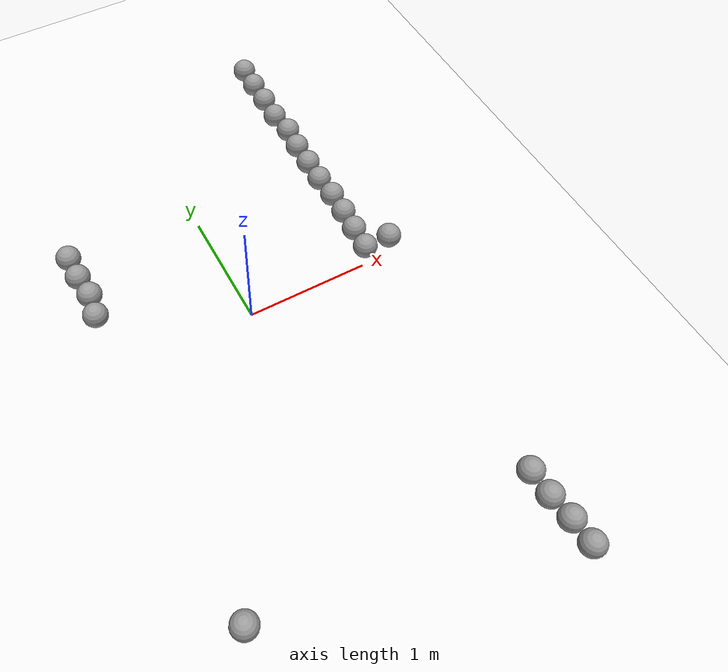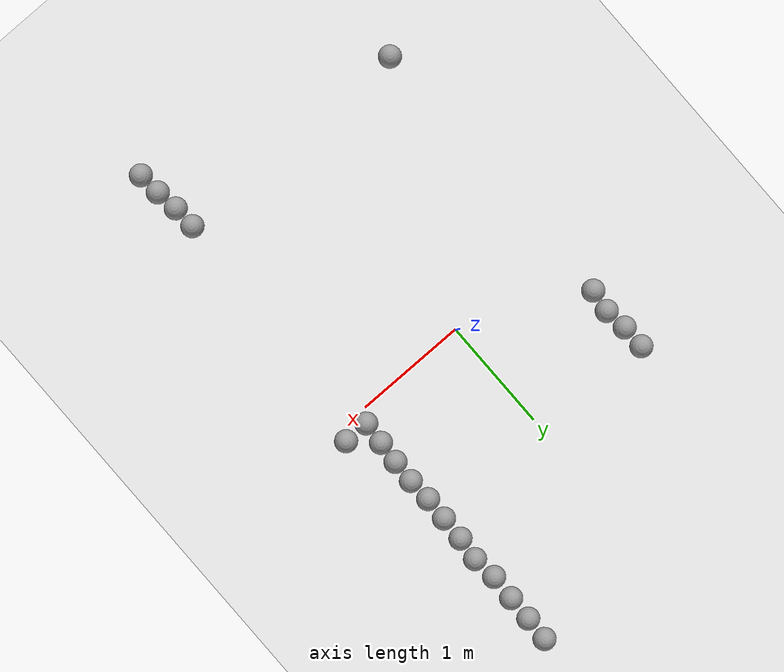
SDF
<sdf version="1.7">
 <world name="default">
  <model name="ground_plane">
   <static>1</static>
   <link name="link">
    <collision name="collision">
     <geometry><plane><normal>0 0 1</normal><size>100 100</size></plane></geometry>
     <surface>
      <contact><collide_bitmask>65535</collide_bitmask></contact>
      <friction><ode><mu>100</mu><mu2>50</mu2></ode></friction>
     </surface>
    </collision>
    <visual name="visual">
     <cast_shadows>0</cast_shadows>
     <geometry><plane><normal>0 0 1</normal><size>100 100</size></plane></geometry>
     <material>
      <script><uri>file://media/materials/scripts/gazebo.material</uri><name>Gazebo/White</name></script>
     </material>
    </visual>
   </link>
  </model>
  <model name="sphere_15">
   <link name="link_0">
    <inertial>
     <mass>1</mass>
     <inertia><ixx>0.1</ixx><ixy>0</ixy><ixz>0</ixz><iyy>0.1</iyy><iyz>0</iyz><izz>0.1</izz></inertia>
    </inertial>
    <visual name="visual">
     <geometry><sphere><radius>0.1</radius></sphere></geometry>
     <material>
      <lighting>1</lighting>
      <script><uri>file://media/materials/scripts/gazebo.material</uri><name>Gazebo/Grey</name></script>
      <shader type="pixel"><normal_map>__default__</normal_map></shader>
      <ambient>0.3 0.3 0.3 1</ambient>
      <diffuse>0.7 0.7 0.7 1</diffuse>
      <specular>0.01 0.01 0.01 1</specular>
      <emissive>0 0 0 1</emissive>
     </material>
    </visual>
    <collision name="collision">
     <geometry><sphere><radius>0.1</radius></sphere></geometry>
     <surface>
      <friction>
       <ode><mu>1</mu><mu2>1</mu2><fdir1>0 0 0</fdir1><slip1>0</slip1><slip2>0</slip2></ode>
       <torsional>
        <coefficient>1</coefficient>
        <patch_radius>0</patch_radius>
        <surface_radius>0</surface_radius>
        <use_patch_radius>1</use_patch_radius>
        <ode><slip>0</slip></ode>
       </torsional>
      </friction>
      <bounce><restitution_coefficient>0</restitution_coefficient><threshold>1e+06</threshold></bounce>
      <contact>
       <collide_without_contact>0</collide_without_contact>
       <collide_without_contact_bitmask>1</collide_without_contact_bitmask>
       <collide_bitmask>1</collide_bitmask>
       <ode>
        <soft_cfm>0</soft_cfm>
        <soft_erp>0.2</soft_erp>
        <kp>1e+13</kp>
        <kd>1</kd>
        <max_vel>0.01</max_vel>
        <min_depth>0</min_depth>
       </ode>
       <bullet>
        <split_impulse>1</split_impulse>
        <split_impulse_penetration_threshold>-0.01</split_impulse_penetration_threshold>
        <soft_cfm>0</soft_cfm>
        <soft_erp>0.2</soft_erp>
        <kp>1e+13</kp>
        <kd>1</kd>
       </bullet>
      </contact>
     </surface>
    </collision>
   </link>
   <static>0</static>
   <pose>-1.07546 -2.08235 0.1 -0.059386 0.004875 0.000548</pose>
  </model>
  <model name="sphere_33">
   <link name="link_0">
    <inertial>
     <mass>1</mass>
     <inertia><ixx>0.1</ixx><ixy>0</ixy><ixz>0</ixz><iyy>0.1</iyy><iyz>0</iyz><izz>0.1</izz></inertia>
    </inertial>
    <visual name="visual">
     <geometry><sphere><radius>0.1</radius></sphere></geometry>
     <material>
      <lighting>1</lighting>
      <script><uri>file://media/materials/scripts/gazebo.material</uri><name>Gazebo/Grey</name></script>
      <shader type="pixel"><normal_map>__default__</normal_map></shader>
      <ambient>0.3 0.3 0.3 1</ambient>
      <diffuse>0.7 0.7 0.7 1</diffuse>
      <specular>0.01 0.01 0.01 1</specular>
      <emissive>0 0 0 1</emissive>
     </material>
    </visual>
    <collision name="collision">
     <geometry><sphere><radius>0.1</radius></sphere></geometry>
     <surface>
      <friction>
       <ode><mu>1</mu><mu2>1</mu2><fdir1>0 0 0</fdir1><slip1>0</slip1><slip2>0</slip2></ode>
       <torsional>
        <coefficient>1</coefficient>
        <patch_radius>0</patch_radius>
        <surface_radius>0</surface_radius>
        <use_patch_radius>1</use_patch_radius>
        <ode><slip>0</slip></ode>
       </torsional>
      </friction>
      <bounce><restitution_coefficient>0</restitution_coefficient><threshold>1e+06</threshold></bounce>
      <contact>
       <collide_without_contact>0</collide_without_contact>
       <collide_without_contact_bitmask>1</collide_without_contact_bitmask>
       <collide_bitmask>1</collide_bitmask>
       <ode>
        <soft_cfm>0</soft_cfm>
        <soft_erp>0.2</soft_erp>
        <kp>1e+13</kp>
        <kd>1</kd>
        <max_vel>0.01</max_vel>
        <min_depth>0</min_depth>
       </ode>
       <bullet>
        <split_impulse>1</split_impulse>
        <split_impulse_penetration_threshold>-0.01</split_impulse_penetration_threshold>
        <soft_cfm>0</soft_cfm>
        <soft_erp>0.2</soft_erp>
        <kp>1e+13</kp>
        <kd>1</kd>
       </bullet>
      </contact>
     </surface>
    </collision>
   </link>
   <static>0</static>
   <pose>1.09596 -2.09176 0.1 -0.053944 -0.003381 -0.000948</pose>
  </model>
  <model name="sphere_34">
   <link name="link_0">
    <inertial>
     <mass>1</mass>
     <inertia><ixx>0.1</ixx><ixy>0</ixy><ixz>0</ixz><iyy>0.1</iyy><iyz>0</iyz><izz>0.1</izz></inertia>
    </inertial>
    <visual name="visual">
     <geometry><sphere><radius>0.1</radius></sphere></geometry>
     <material>
      <lighting>1</lighting>
      <script><uri>file://media/materials/scripts/gazebo.material</uri><name>Gazebo/Grey</name></script>
      <shader type="pixel"><normal_map>__default__</normal_map></shader>
      <ambient>0.3 0.3 0.3 1</ambient>
      <diffuse>0.7 0.7 0.7 1</diffuse>
      <specular>0.01 0.01 0.01 1</specular>
      <emissive>0 0 0 1</emissive>
     </material>
    </visual>
    <collision name="collision">
     <geometry><sphere><radius>0.1</radius></sphere></geometry>
     <surface>
      <friction>
       <ode><mu>1</mu><mu2>1</mu2><fdir1>0 0 0</fdir1><slip1>0</slip1><slip2>0</slip2></ode>
       <torsional>
        <coefficient>1</coefficient>
        <patch_radius>0</patch_radius>
        <surface_radius>0</surface_radius>
        <use_patch_radius>1</use_patch_radius>
        <ode><slip>0</slip></ode>
       </torsional>
      </friction>
      <bounce><restitution_coefficient>0</restitution_coefficient><threshold>1e+06</threshold></bounce>
      <contact>
       <collide_without_contact>0</collide_without_contact>
       <collide_without_contact_bitmask>1</collide_without_contact_bitmask>
       <collide_bitmask>1</collide_bitmask>
       <ode>
        <soft_cfm>0</soft_cfm>
        <soft_erp>0.2</soft_erp>
        <kp>1e+13</kp>
        <kd>1</kd>
        <max_vel>0.01</max_vel>
        <min_depth>0</min_depth>
       </ode>
       <bullet>
        <split_impulse>1</split_impulse>
        <split_impulse_penetration_threshold>-0.01</split_impulse_penetration_threshold>
        <soft_cfm>0</soft_cfm>
        <soft_erp>0.2</soft_erp>
        <kp>1e+13</kp>
        <kd>1</kd>
       </bullet>
      </contact>
     </surface>
    </collision>
   </link>
   <static>0</static>
   <pose>1.10487 -2.29479 0.1 0.017207 -0.001358 0.002524</pose>
  </model>
  <model name="sphere_35">
   <link name="link_0">
    <inertial>
     <mass>1</mass>
     <inertia><ixx>0.1</ixx><ixy>0</ixy><ixz>0</ixz><iyy>0.1</iyy><iyz>0</iyz><izz>0.1</izz></inertia>
    </inertial>
    <visual name="visual">
     <geometry><sphere><radius>0.1</radius></sphere></geometry>
     <material>
      <lighting>1</lighting>
      <script><uri>file://media/materials/scripts/gazebo.material</uri><name>Gazebo/Grey</name></script>
      <shader type="pixel"><normal_map>__default__</normal_map></shader>
      <ambient>0.3 0.3 0.3 1</ambient>
      <diffuse>0.7 0.7 0.7 1</diffuse>
      <specular>0.01 0.01 0.01 1</specular>
      <emissive>0 0 0 1</emissive>
     </material>
    </visual>
    <collision name="collision">
     <geometry><sphere><radius>0.1</radius></sphere></geometry>
     <surface>
      <friction>
       <ode><mu>1</mu><mu2>1</mu2><fdir1>0 0 0</fdir1><slip1>0</slip1><slip2>0</slip2></ode>
       <torsional>
        <coefficient>1</coefficient>
        <patch_radius>0</patch_radius>
        <surface_radius>0</surface_radius>
        <use_patch_radius>1</use_patch_radius>
        <ode><slip>0</slip></ode>
       </torsional>
      </friction>
      <bounce><restitution_coefficient>0</restitution_coefficient><threshold>1e+06</threshold></bounce>
      <contact>
       <collide_without_contact>0</collide_without_contact>
       <collide_without_contact_bitmask>1</collide_without_contact_bitmask>
       <collide_bitmask>1</collide_bitmask>
       <ode>
        <soft_cfm>0</soft_cfm>
        <soft_erp>0.2</soft_erp>
        <kp>1e+13</kp>
        <kd>1</kd>
        <max_vel>0.01</max_vel>
        <min_depth>0</min_depth>
       </ode>
       <bullet>
        <split_impulse>1</split_impulse>
        <split_impulse_penetration_threshold>-0.01</split_impulse_penetration_threshold>
        <soft_cfm>0</soft_cfm>
        <soft_erp>0.2</soft_erp>
        <kp>1e+13</kp>
        <kd>1</kd>
       </bullet>
      </contact>
     </surface>
    </collision>
   </link>
   <static>0</static>
   <pose>1.1309 -2.49326 0.1 -0.103663 0.025602 0.030256</pose>
  </model>
  <model name="sphere_36">
   <link name="link_0">
    <inertial>
     <mass>1</mass>
     <inertia><ixx>0.1</ixx><ixy>0</ixy><ixz>0</ixz><iyy>0.1</iyy><iyz>0</iyz><izz>0.1</izz></inertia>
    </inertial>
    <visual name="visual">
     <geometry><sphere><radius>0.1</radius></sphere></geometry>
     <material>
      <lighting>1</lighting>
      <script><uri>file://media/materials/scripts/gazebo.material</uri><name>Gazebo/Grey</name></script>
      <shader type="pixel"><normal_map>__default__</normal_map></shader>
      <ambient>0.3 0.3 0.3 1</ambient>
      <diffuse>0.7 0.7 0.7 1</diffuse>
      <specular>0.01 0.01 0.01 1</specular>
      <emissive>0 0 0 1</emissive>
     </material>
    </visual>
    <collision name="collision">
     <geometry><sphere><radius>0.1</radius></sphere></geometry>
     <surface>
      <friction>
       <ode><mu>1</mu><mu2>1</mu2><fdir1>0 0 0</fdir1><slip1>0</slip1><slip2>0</slip2></ode>
       <torsional>
        <coefficient>1</coefficient>
        <patch_radius>0</patch_radius>
        <surface_radius>0</surface_radius>
        <use_patch_radius>1</use_patch_radius>
        <ode><slip>0</slip></ode>
       </torsional>
      </friction>
      <bounce><restitution_coefficient>0</restitution_coefficient><threshold>1e+06</threshold></bounce>
      <contact>
       <collide_without_contact>0</collide_without_contact>
       <collide_without_contact_bitmask>1</collide_without_contact_bitmask>
       <collide_bitmask>1</collide_bitmask>
       <ode>
        <soft_cfm>0</soft_cfm>
        <soft_erp>0.2</soft_erp>
        <kp>1e+13</kp>
        <kd>1</kd>
        <max_vel>0.01</max_vel>
        <min_depth>0</min_depth>
       </ode>
       <bullet>
        <split_impulse>1</split_impulse>
        <split_impulse_penetration_threshold>-0.01</split_impulse_penetration_threshold>
        <soft_cfm>0</soft_cfm>
        <soft_erp>0.2</soft_erp>
        <kp>1e+13</kp>
        <kd>1</kd>
       </bullet>
      </contact>
     </surface>
    </collision>
   </link>
   <static>0</static>
   <pose>1.14408 -2.693 0.1 0.003598 0.046404 0.000405</pose>
  </model>
  <model name="sphere_62">
   <link name="link_0">
    <inertial>
     <mass>1</mass>
     <inertia><ixx>0.1</ixx><ixy>0</ixy><ixz>0</ixz><iyy>0.1</iyy><iyz>0</iyz><izz>0.1</izz></inertia>
    </inertial>
    <visual name="visual">
     <geometry><sphere><radius>0.1</radius></sphere></geometry>
     <material>
      <lighting>1</lighting>
      <script><uri>file://media/materials/scripts/gazebo.material</uri><name>Gazebo/Grey</name></script>
      <shader type="pixel"><normal_map>__default__</normal_map></shader>
      <ambient>0.3 0.3 0.3 1</ambient>
      <diffuse>0.7 0.7 0.7 1</diffuse>
      <specular>0.01 0.01 0.01 1</specular>
      <emissive>0 0 0 1</emissive>
     </material>
    </visual>
    <collision name="collision">
     <geometry><sphere><radius>0.1</radius></sphere></geometry>
     <surface>
      <friction>
       <ode><mu>1</mu><mu2>1</mu2><fdir1>0 0 0</fdir1><slip1>0</slip1><slip2>0</slip2></ode>
       <torsional>
        <coefficient>1</coefficient>
        <patch_radius>0</patch_radius>
        <surface_radius>0</surface_radius>
        <use_patch_radius>1</use_patch_radius>
        <ode><slip>0</slip></ode>
       </torsional>
      </friction>
      <bounce><restitution_coefficient>0</restitution_coefficient><threshold>1e+06</threshold></bounce>
      <contact>
       <collide_without_contact>0</collide_without_contact>
       <collide_without_contact_bitmask>1</collide_without_contact_bitmask>
       <collide_bitmask>1</collide_bitmask>
       <ode>
        <soft_cfm>0</soft_cfm>
        <soft_erp>0.2</soft_erp>
        <kp>1e+13</kp>
        <kd>1</kd>
        <max_vel>0.01</max_vel>
        <min_depth>0</min_depth>
       </ode>
       <bullet>
        <split_impulse>1</split_impulse>
        <split_impulse_penetration_threshold>-0.01</split_impulse_penetration_threshold>
        <soft_cfm>0</soft_cfm>
        <soft_erp>0.2</soft_erp>
        <kp>1e+13</kp>
        <kd>1</kd>
       </bullet>
      </contact>
     </surface>
    </collision>
   </link>
   <static>0</static>
   <pose>1.07641 0.101942 0.1 0 -0 0</pose>
  </model>
  <model name="sphere_63">
   <link name="link_0">
    <inertial>
     <mass>1</mass>
     <inertia><ixx>0.1</ixx><ixy>0</ixy><ixz>0</ixz><iyy>0.1</iyy><iyz>0</iyz><izz>0.1</izz></inertia>
    </inertial>
    <visual name="visual">
     <geometry><sphere><radius>0.1</radius></sphere></geometry>
     <material>
      <lighting>1</lighting>
      <script><uri>file://media/materials/scripts/gazebo.material</uri><name>Gazebo/Grey</name></script>
      <shader type="pixel"><normal_map>__default__</normal_map></shader>
      <ambient>0.3 0.3 0.3 1</ambient>
      <diffuse>0.7 0.7 0.7 1</diffuse>
      <specular>0.01 0.01 0.01 1</specular>
      <emissive>0 0 0 1</emissive>
     </material>
    </visual>
    <collision name="collision">
     <geometry><sphere><radius>0.1</radius></sphere></geometry>
     <surface>
      <friction>
       <ode><mu>1</mu><mu2>1</mu2><fdir1>0 0 0</fdir1><slip1>0</slip1><slip2>0</slip2></ode>
       <torsional>
        <coefficient>1</coefficient>
        <patch_radius>0</patch_radius>
        <surface_radius>0</surface_radius>
        <use_patch_radius>1</use_patch_radius>
        <ode><slip>0</slip></ode>
       </torsional>
      </friction>
      <bounce><restitution_coefficient>0</restitution_coefficient><threshold>1e+06</threshold></bounce>
      <contact>
       <collide_without_contact>0</collide_without_contact>
       <collide_without_contact_bitmask>1</collide_without_contact_bitmask>
       <collide_bitmask>1</collide_bitmask>
       <ode>
        <soft_cfm>0</soft_cfm>
        <soft_erp>0.2</soft_erp>
        <kp>1e+13</kp>
        <kd>1</kd>
        <max_vel>0.01</max_vel>
        <min_depth>0</min_depth>
       </ode>
       <bullet>
        <split_impulse>1</split_impulse>
        <split_impulse_penetration_threshold>-0.01</split_impulse_penetration_threshold>
        <soft_cfm>0</soft_cfm>
        <soft_erp>0.2</soft_erp>
        <kp>1e+13</kp>
        <kd>1</kd>
       </bullet>
      </contact>
     </surface>
    </collision>
   </link>
   <static>0</static>
   <pose>1.30048 0.10381 0.1 0 -0 0</pose>
  </model>
  <model name="sphere_74">
   <link name="link_0">
    <inertial>
     <mass>1</mass>
     <inertia><ixx>0.1</ixx><ixy>0</ixy><ixz>0</ixz><iyy>0.1</iyy><iyz>0</iyz><izz>0.1</izz></inertia>
    </inertial>
    <visual name="visual">
     <geometry><sphere><radius>0.1</radius></sphere></geometry>
     <material>
      <lighting>1</lighting>
      <script><uri>file://media/materials/scripts/gazebo.material</uri><name>Gazebo/Grey</name></script>
      <shader type="pixel"><normal_map>__default__</normal_map></shader>
      <ambient>0.3 0.3 0.3 1</ambient>
      <diffuse>0.7 0.7 0.7 1</diffuse>
      <specular>0.01 0.01 0.01 1</specular>
      <emissive>0 0 0 1</emissive>
     </material>
    </visual>
    <collision name="collision">
     <geometry><sphere><radius>0.1</radius></sphere></geometry>
     <surface>
      <friction>
       <ode><mu>1</mu><mu2>1</mu2><fdir1>0 0 0</fdir1><slip1>0</slip1><slip2>0</slip2></ode>
       <torsional>
        <coefficient>1</coefficient>
        <patch_radius>0</patch_radius>
        <surface_radius>0</surface_radius>
        <use_patch_radius>1</use_patch_radius>
        <ode><slip>0</slip></ode>
       </torsional>
      </friction>
      <bounce><restitution_coefficient>0</restitution_coefficient><threshold>1e+06</threshold></bounce>
      <contact>
       <collide_without_contact>0</collide_without_contact>
       <collide_without_contact_bitmask>1</collide_without_contact_bitmask>
       <collide_bitmask>1</collide_bitmask>
       <ode>
        <soft_cfm>0</soft_cfm>
        <soft_erp>0.2</soft_erp>
        <kp>1e+13</kp>
        <kd>1</kd>
        <max_vel>0.01</max_vel>
        <min_depth>0</min_depth>
       </ode>
       <bullet>
        <split_impulse>1</split_impulse>
        <split_impulse_penetration_threshold>-0.01</split_impulse_penetration_threshold>
        <soft_cfm>0</soft_cfm>
        <soft_erp>0.2</soft_erp>
        <kp>1e+13</kp>
        <kd>1</kd>
       </bullet>
      </contact>
     </surface>
    </collision>
   </link>
   <static>0</static>
   <pose>1.08893 0.304027 0.1 0.017206 -0.001011 -0.000165</pose>
  </model>
  <model name="sphere_75">
   <link name="link_0">
    <inertial>
     <mass>1</mass>
     <inertia><ixx>0.1</ixx><ixy>0</ixy><ixz>0</ixz><iyy>0.1</iyy><iyz>0</iyz><izz>0.1</izz></inertia>
    </inertial>
    <visual name="visual">
     <geometry><sphere><radius>0.1</radius></sphere></geometry>
     <material>
      <lighting>1</lighting>
      <script><uri>file://media/materials/scripts/gazebo.material</uri><name>Gazebo/Grey</name></script>
      <shader type="pixel"><normal_map>__default__</normal_map></shader>
      <ambient>0.3 0.3 0.3 1</ambient>
      <diffuse>0.7 0.7 0.7 1</diffuse>
      <specular>0.01 0.01 0.01 1</specular>
      <emissive>0 0 0 1</emissive>
     </material>
    </visual>
    <collision name="collision">
     <geometry><sphere><radius>0.1</radius></sphere></geometry>
     <surface>
      <friction>
       <ode><mu>1</mu><mu2>1</mu2><fdir1>0 0 0</fdir1><slip1>0</slip1><slip2>0</slip2></ode>
       <torsional>
        <coefficient>1</coefficient>
        <patch_radius>0</patch_radius>
        <surface_radius>0</surface_radius>
        <use_patch_radius>1</use_patch_radius>
        <ode><slip>0</slip></ode>
       </torsional>
      </friction>
      <bounce><restitution_coefficient>0</restitution_coefficient><threshold>1e+06</threshold></bounce>
      <contact>
       <collide_without_contact>0</collide_without_contact>
       <collide_without_contact_bitmask>1</collide_without_contact_bitmask>
       <collide_bitmask>1</collide_bitmask>
       <ode>
        <soft_cfm>0</soft_cfm>
        <soft_erp>0.2</soft_erp>
        <kp>1e+13</kp>
        <kd>1</kd>
        <max_vel>0.01</max_vel>
        <min_depth>0</min_depth>
       </ode>
       <bullet>
        <split_impulse>1</split_impulse>
        <split_impulse_penetration_threshold>-0.01</split_impulse_penetration_threshold>
        <soft_cfm>0</soft_cfm>
        <soft_erp>0.2</soft_erp>
        <kp>1e+13</kp>
        <kd>1</kd>
       </bullet>
      </contact>
     </surface>
    </collision>
   </link>
   <static>0</static>
   <pose>1.10226 0.503607 0.1 0.101616 -0.003493 1.5e-05</pose>
  </model>
  <model name="sphere_76">
   <link name="link_0">
    <inertial>
     <mass>1</mass>
     <inertia><ixx>0.1</ixx><ixy>0</ixy><ixz>0</ixz><iyy>0.1</iyy><iyz>0</iyz><izz>0.1</izz></inertia>
    </inertial>
    <visual name="visual">
     <geometry><sphere><radius>0.1</radius></sphere></geometry>
     <material>
      <lighting>1</lighting>
      <script><uri>file://media/materials/scripts/gazebo.material</uri><name>Gazebo/Grey</name></script>
      <shader type="pixel"><normal_map>__default__</normal_map></shader>
      <ambient>0.3 0.3 0.3 1</ambient>
      <diffuse>0.7 0.7 0.7 1</diffuse>
      <specular>0.01 0.01 0.01 1</specular>
      <emissive>0 0 0 1</emissive>
     </material>
    </visual>
    <collision name="collision">
     <geometry><sphere><radius>0.1</radius></sphere></geometry>
     <surface>
      <friction>
       <ode><mu>1</mu><mu2>1</mu2><fdir1>0 0 0</fdir1><slip1>0</slip1><slip2>0</slip2></ode>
       <torsional>
        <coefficient>1</coefficient>
        <patch_radius>0</patch_radius>
        <surface_radius>0</surface_radius>
        <use_patch_radius>1</use_patch_radius>
        <ode><slip>0</slip></ode>
       </torsional>
      </friction>
      <bounce><restitution_coefficient>0</restitution_coefficient><threshold>1e+06</threshold></bounce>
      <contact>
       <collide_without_contact>0</collide_without_contact>
       <collide_without_contact_bitmask>1</collide_without_contact_bitmask>
       <collide_bitmask>1</collide_bitmask>
       <ode>
        <soft_cfm>0</soft_cfm>
        <soft_erp>0.2</soft_erp>
        <kp>1e+13</kp>
        <kd>1</kd>
        <max_vel>0.01</max_vel>
        <min_depth>0</min_depth>
       </ode>
       <bullet>
        <split_impulse>1</split_impulse>
        <split_impulse_penetration_threshold>-0.01</split_impulse_penetration_threshold>
        <soft_cfm>0</soft_cfm>
        <soft_erp>0.2</soft_erp>
        <kp>1e+13</kp>
        <kd>1</kd>
       </bullet>
      </contact>
     </surface>
    </collision>
   </link>
   <static>0</static>
   <pose>1.10902 0.708113 0.1 -0.111961 0.003989 0.000131</pose>
  </model>
  <model name="sphere_77">
   <link name="link_0">
    <inertial>
     <mass>1</mass>
     <inertia><ixx>0.1</ixx><ixy>0</ixy><ixz>0</ixz><iyy>0.1</iyy><iyz>0</iyz><izz>0.1</izz></inertia>
    </inertial>
    <visual name="visual">
     <geometry><sphere><radius>0.1</radius></sphere></geometry>
     <material>
      <lighting>1</lighting>
      <script><uri>file://media/materials/scripts/gazebo.material</uri><name>Gazebo/Grey</name></script>
      <shader type="pixel"><normal_map>__default__</normal_map></shader>
      <ambient>0.3 0.3 0.3 1</ambient>
      <diffuse>0.7 0.7 0.7 1</diffuse>
      <specular>0.01 0.01 0.01 1</specular>
      <emissive>0 0 0 1</emissive>
     </material>
    </visual>
    <collision name="collision">
     <geometry><sphere><radius>0.1</radius></sphere></geometry>
     <surface>
      <friction>
       <ode><mu>1</mu><mu2>1</mu2><fdir1>0 0 0</fdir1><slip1>0</slip1><slip2>0</slip2></ode>
       <torsional>
        <coefficient>1</coefficient>
        <patch_radius>0</patch_radius>
        <surface_radius>0</surface_radius>
        <use_patch_radius>1</use_patch_radius>
        <ode><slip>0</slip></ode>
       </torsional>
      </friction>
      <bounce><restitution_coefficient>0</restitution_coefficient><threshold>1e+06</threshold></bounce>
      <contact>
       <collide_without_contact>0</collide_without_contact>
       <collide_without_contact_bitmask>1</collide_without_contact_bitmask>
       <collide_bitmask>1</collide_bitmask>
       <ode>
        <soft_cfm>0</soft_cfm>
        <soft_erp>0.2</soft_erp>
        <kp>1e+13</kp>
        <kd>1</kd>
        <max_vel>0.01</max_vel>
        <min_depth>0</min_depth>
       </ode>
       <bullet>
        <split_impulse>1</split_impulse>
        <split_impulse_penetration_threshold>-0.01</split_impulse_penetration_threshold>
        <soft_cfm>0</soft_cfm>
        <soft_erp>0.2</soft_erp>
        <kp>1e+13</kp>
        <kd>1</kd>
       </bullet>
      </contact>
     </surface>
    </collision>
   </link>
   <static>0</static>
   <pose>1.09899 0.916282 0.1 0 -0 0</pose>
  </model>
  <model name="sphere_78">
   <link name="link_0">
    <inertial>
     <mass>1</mass>
     <inertia><ixx>0.1</ixx><ixy>0</ixy><ixz>0</ixz><iyy>0.1</iyy><iyz>0</iyz><izz>0.1</izz></inertia>
    </inertial>
    <visual name="visual">
     <geometry><sphere><radius>0.1</radius></sphere></geometry>
     <material>
      <lighting>1</lighting>
      <script><uri>file://media/materials/scripts/gazebo.material</uri><name>Gazebo/Grey</name></script>
      <shader type="pixel"><normal_map>__default__</normal_map></shader>
      <ambient>0.3 0.3 0.3 1</ambient>
      <diffuse>0.7 0.7 0.7 1</diffuse>
      <specular>0.01 0.01 0.01 1</specular>
      <emissive>0 0 0 1</emissive>
     </material>
    </visual>
    <collision name="collision">
     <geometry><sphere><radius>0.1</radius></sphere></geometry>
     <surface>
      <friction>
       <ode><mu>1</mu><mu2>1</mu2><fdir1>0 0 0</fdir1><slip1>0</slip1><slip2>0</slip2></ode>
       <torsional>
        <coefficient>1</coefficient>
        <patch_radius>0</patch_radius>
        <surface_radius>0</surface_radius>
        <use_patch_radius>1</use_patch_radius>
        <ode><slip>0</slip></ode>
       </torsional>
      </friction>
      <bounce><restitution_coefficient>0</restitution_coefficient><threshold>1e+06</threshold></bounce>
      <contact>
       <collide_without_contact>0</collide_without_contact>
       <collide_without_contact_bitmask>1</collide_without_contact_bitmask>
       <collide_bitmask>1</collide_bitmask>
       <ode>
        <soft_cfm>0</soft_cfm>
        <soft_erp>0.2</soft_erp>
        <kp>1e+13</kp>
        <kd>1</kd>
        <max_vel>0.01</max_vel>
        <min_depth>0</min_depth>
       </ode>
       <bullet>
        <split_impulse>1</split_impulse>
        <split_impulse_penetration_threshold>-0.01</split_impulse_penetration_threshold>
        <soft_cfm>0</soft_cfm>
        <soft_erp>0.2</soft_erp>
        <kp>1e+13</kp>
        <kd>1</kd>
       </bullet>
      </contact>
     </surface>
    </collision>
   </link>
   <static>0</static>
   <pose>1.10462 1.12538 0.1 0 -0 0</pose>
  </model>
  <model name="sphere_79">
   <link name="link_0">
    <inertial>
     <mass>1</mass>
     <inertia><ixx>0.1</ixx><ixy>0</ixy><ixz>0</ixz><iyy>0.1</iyy><iyz>0</iyz><izz>0.1</izz></inertia>
    </inertial>
    <visual name="visual">
     <geometry><sphere><radius>0.1</radius></sphere></geometry>
     <material>
      <lighting>1</lighting>
      <script><uri>file://media/materials/scripts/gazebo.material</uri><name>Gazebo/Grey</name></script>
      <shader type="pixel"><normal_map>__default__</normal_map></shader>
      <ambient>0.3 0.3 0.3 1</ambient>
      <diffuse>0.7 0.7 0.7 1</diffuse>
      <specular>0.01 0.01 0.01 1</specular>
      <emissive>0 0 0 1</emissive>
     </material>
    </visual>
    <collision name="collision">
     <geometry><sphere><radius>0.1</radius></sphere></geometry>
     <surface>
      <friction>
       <ode><mu>1</mu><mu2>1</mu2><fdir1>0 0 0</fdir1><slip1>0</slip1><slip2>0</slip2></ode>
       <torsional>
        <coefficient>1</coefficient>
        <patch_radius>0</patch_radius>
        <surface_radius>0</surface_radius>
        <use_patch_radius>1</use_patch_radius>
        <ode><slip>0</slip></ode>
       </torsional>
      </friction>
      <bounce><restitution_coefficient>0</restitution_coefficient><threshold>1e+06</threshold></bounce>
      <contact>
       <collide_without_contact>0</collide_without_contact>
       <collide_without_contact_bitmask>1</collide_without_contact_bitmask>
       <collide_bitmask>1</collide_bitmask>
       <ode>
        <soft_cfm>0</soft_cfm>
        <soft_erp>0.2</soft_erp>
        <kp>1e+13</kp>
        <kd>1</kd>
        <max_vel>0.01</max_vel>
        <min_depth>0</min_depth>
       </ode>
       <bullet>
        <split_impulse>1</split_impulse>
        <split_impulse_penetration_threshold>-0.01</split_impulse_penetration_threshold>
        <soft_cfm>0</soft_cfm>
        <soft_erp>0.2</soft_erp>
        <kp>1e+13</kp>
        <kd>1</kd>
       </bullet>
      </contact>
     </surface>
    </collision>
   </link>
   <static>0</static>
   <pose>1.11018 1.34189 0.1 0 -0 0</pose>
  </model>
  <model name="sphere_80">
   <link name="link_0">
    <inertial>
     <mass>1</mass>
     <inertia><ixx>0.1</ixx><ixy>0</ixy><ixz>0</ixz><iyy>0.1</iyy><iyz>0</iyz><izz>0.1</izz></inertia>
    </inertial>
    <visual name="visual">
     <geometry><sphere><radius>0.1</radius></sphere></geometry>
     <material>
      <lighting>1</lighting>
      <script><uri>file://media/materials/scripts/gazebo.material</uri><name>Gazebo/Grey</name></script>
      <shader type="pixel"><normal_map>__default__</normal_map></shader>
      <ambient>0.3 0.3 0.3 1</ambient>
      <diffuse>0.7 0.7 0.7 1</diffuse>
      <specular>0.01 0.01 0.01 1</specular>
      <emissive>0 0 0 1</emissive>
     </material>
    </visual>
    <collision name="collision">
     <geometry><sphere><radius>0.1</radius></sphere></geometry>
     <surface>
      <friction>
       <ode><mu>1</mu><mu2>1</mu2><fdir1>0 0 0</fdir1><slip1>0</slip1><slip2>0</slip2></ode>
       <torsional>
        <coefficient>1</coefficient>
        <patch_radius>0</patch_radius>
        <surface_radius>0</surface_radius>
        <use_patch_radius>1</use_patch_radius>
        <ode><slip>0</slip></ode>
       </torsional>
      </friction>
      <bounce><restitution_coefficient>0</restitution_coefficient><threshold>1e+06</threshold></bounce>
      <contact>
       <collide_without_contact>0</collide_without_contact>
       <collide_without_contact_bitmask>1</collide_without_contact_bitmask>
       <collide_bitmask>1</collide_bitmask>
       <ode>
        <soft_cfm>0</soft_cfm>
        <soft_erp>0.2</soft_erp>
        <kp>1e+13</kp>
        <kd>1</kd>
        <max_vel>0.01</max_vel>
        <min_depth>0</min_depth>
       </ode>
       <bullet>
        <split_impulse>1</split_impulse>
        <split_impulse_penetration_threshold>-0.01</split_impulse_penetration_threshold>
        <soft_cfm>0</soft_cfm>
        <soft_erp>0.2</soft_erp>
        <kp>1e+13</kp>
        <kd>1</kd>
       </bullet>
      </contact>
     </surface>
    </collision>
   </link>
   <static>0</static>
   <pose>1.13041 1.55086 0.1 0 -0 0</pose>
  </model>
  <model name="sphere_81">
   <link name="link_0">
    <inertial>
     <mass>1</mass>
     <inertia><ixx>0.1</ixx><ixy>0</ixy><ixz>0</ixz><iyy>0.1</iyy><iyz>0</iyz><izz>0.1</izz></inertia>
    </inertial>
    <visual name="visual">
     <geometry><sphere><radius>0.1</radius></sphere></geometry>
     <material>
      <lighting>1</lighting>
      <script><uri>file://media/materials/scripts/gazebo.material</uri><name>Gazebo/Grey</name></script>
      <shader type="pixel"><normal_map>__default__</normal_map></shader>
      <ambient>0.3 0.3 0.3 1</ambient>
      <diffuse>0.7 0.7 0.7 1</diffuse>
      <specular>0.01 0.01 0.01 1</specular>
      <emissive>0 0 0 1</emissive>
     </material>
    </visual>
    <collision name="collision">
     <geometry><sphere><radius>0.1</radius></sphere></geometry>
     <surface>
      <friction>
       <ode><mu>1</mu><mu2>1</mu2><fdir1>0 0 0</fdir1><slip1>0</slip1><slip2>0</slip2></ode>
       <torsional>
        <coefficient>1</coefficient>
        <patch_radius>0</patch_radius>
        <surface_radius>0</surface_radius>
        <use_patch_radius>1</use_patch_radius>
        <ode><slip>0</slip></ode>
       </torsional>
      </friction>
      <bounce><restitution_coefficient>0</restitution_coefficient><threshold>1e+06</threshold></bounce>
      <contact>
       <collide_without_contact>0</collide_without_contact>
       <collide_without_contact_bitmask>1</collide_without_contact_bitmask>
       <collide_bitmask>1</collide_bitmask>
       <ode>
        <soft_cfm>0</soft_cfm>
        <soft_erp>0.2</soft_erp>
        <kp>1e+13</kp>
        <kd>1</kd>
        <max_vel>0.01</max_vel>
        <min_depth>0</min_depth>
       </ode>
       <bullet>
        <split_impulse>1</split_impulse>
        <split_impulse_penetration_threshold>-0.01</split_impulse_penetration_threshold>
        <soft_cfm>0</soft_cfm>
        <soft_erp>0.2</soft_erp>
        <kp>1e+13</kp>
        <kd>1</kd>
       </bullet>
      </contact>
     </surface>
    </collision>
   </link>
   <static>0</static>
   <pose>1.10734 1.76744 0.1 0 -0 0</pose>
  </model>
  <model name="sphere_82">
   <link name="link_0">
    <inertial>
     <mass>1</mass>
     <inertia><ixx>0.1</ixx><ixy>0</ixy><ixz>0</ixz><iyy>0.1</iyy><iyz>0</iyz><izz>0.1</izz></inertia>
    </inertial>
    <visual name="visual">
     <geometry><sphere><radius>0.1</radius></sphere></geometry>
     <material>
      <lighting>1</lighting>
      <script><uri>file://media/materials/scripts/gazebo.material</uri><name>Gazebo/Grey</name></script>
      <shader type="pixel"><normal_map>__default__</normal_map></shader>
      <ambient>0.3 0.3 0.3 1</ambient>
      <diffuse>0.7 0.7 0.7 1</diffuse>
      <specular>0.01 0.01 0.01 1</specular>
      <emissive>0 0 0 1</emissive>
     </material>
    </visual>
    <collision name="collision">
     <geometry><sphere><radius>0.1</radius></sphere></geometry>
     <surface>
      <friction>
       <ode><mu>1</mu><mu2>1</mu2><fdir1>0 0 0</fdir1><slip1>0</slip1><slip2>0</slip2></ode>
       <torsional>
        <coefficient>1</coefficient>
        <patch_radius>0</patch_radius>
        <surface_radius>0</surface_radius>
        <use_patch_radius>1</use_patch_radius>
        <ode><slip>0</slip></ode>
       </torsional>
      </friction>
      <bounce><restitution_coefficient>0</restitution_coefficient><threshold>1e+06</threshold></bounce>
      <contact>
       <collide_without_contact>0</collide_without_contact>
       <collide_without_contact_bitmask>1</collide_without_contact_bitmask>
       <collide_bitmask>1</collide_bitmask>
       <ode>
        <soft_cfm>0</soft_cfm>
        <soft_erp>0.2</soft_erp>
        <kp>1e+13</kp>
        <kd>1</kd>
        <max_vel>0.01</max_vel>
        <min_depth>0</min_depth>
       </ode>
       <bullet>
        <split_impulse>1</split_impulse>
        <split_impulse_penetration_threshold>-0.01</split_impulse_penetration_threshold>
        <soft_cfm>0</soft_cfm>
        <soft_erp>0.2</soft_erp>
        <kp>1e+13</kp>
        <kd>1</kd>
       </bullet>
      </contact>
     </surface>
    </collision>
   </link>
   <static>0</static>
   <pose>1.11591 1.99478 0.1 0 -0 0</pose>
  </model>
  <model name="sphere_83">
   <link name="link_0">
    <inertial>
     <mass>1</mass>
     <inertia><ixx>0.1</ixx><ixy>0</ixy><ixz>0</ixz><iyy>0.1</iyy><iyz>0</iyz><izz>0.1</izz></inertia>
    </inertial>
    <visual name="visual">
     <geometry><sphere><radius>0.1</radius></sphere></geometry>
     <material>
      <lighting>1</lighting>
      <script><uri>file://media/materials/scripts/gazebo.material</uri><name>Gazebo/Grey</name></script>
      <shader type="pixel"><normal_map>__default__</normal_map></shader>
      <ambient>0.3 0.3 0.3 1</ambient>
      <diffuse>0.7 0.7 0.7 1</diffuse>
      <specular>0.01 0.01 0.01 1</specular>
      <emissive>0 0 0 1</emissive>
     </material>
    </visual>
    <collision name="collision">
     <geometry><sphere><radius>0.1</radius></sphere></geometry>
     <surface>
      <friction>
       <ode><mu>1</mu><mu2>1</mu2><fdir1>0 0 0</fdir1><slip1>0</slip1><slip2>0</slip2></ode>
       <torsional>
        <coefficient>1</coefficient>
        <patch_radius>0</patch_radius>
        <surface_radius>0</surface_radius>
        <use_patch_radius>1</use_patch_radius>
        <ode><slip>0</slip></ode>
       </torsional>
      </friction>
      <bounce><restitution_coefficient>0</restitution_coefficient><threshold>1e+06</threshold></bounce>
      <contact>
       <collide_without_contact>0</collide_without_contact>
       <collide_without_contact_bitmask>1</collide_without_contact_bitmask>
       <collide_bitmask>1</collide_bitmask>
       <ode>
        <soft_cfm>0</soft_cfm>
        <soft_erp>0.2</soft_erp>
        <kp>1e+13</kp>
        <kd>1</kd>
        <max_vel>0.01</max_vel>
        <min_depth>0</min_depth>
       </ode>
       <bullet>
        <split_impulse>1</split_impulse>
        <split_impulse_penetration_threshold>-0.01</split_impulse_penetration_threshold>
        <soft_cfm>0</soft_cfm>
        <soft_erp>0.2</soft_erp>
        <kp>1e+13</kp>
        <kd>1</kd>
       </bullet>
      </contact>
     </surface>
    </collision>
   </link>
   <static>0</static>
   <pose>1.11923 2.21673 0.1 0 -0 0</pose>
  </model>
  <model name="sphere_84">
   <link name="link_0">
    <inertial>
     <mass>1</mass>
     <inertia><ixx>0.1</ixx><ixy>0</ixy><ixz>0</ixz><iyy>0.1</iyy><iyz>0</iyz><izz>0.1</izz></inertia>
    </inertial>
    <visual name="visual">
     <geometry><sphere><radius>0.1</radius></sphere></geometry>
     <material>
      <lighting>1</lighting>
      <script><uri>file://media/materials/scripts/gazebo.material</uri><name>Gazebo/Grey</name></script>
      <shader type="pixel"><normal_map>__default__</normal_map></shader>
      <ambient>0.3 0.3 0.3 1</ambient>
      <diffuse>0.7 0.7 0.7 1</diffuse>
      <specular>0.01 0.01 0.01 1</specular>
      <emissive>0 0 0 1</emissive>
     </material>
    </visual>
    <collision name="collision">
     <geometry><sphere><radius>0.1</radius></sphere></geometry>
     <surface>
      <friction>
       <ode><mu>1</mu><mu2>1</mu2><fdir1>0 0 0</fdir1><slip1>0</slip1><slip2>0</slip2></ode>
       <torsional>
        <coefficient>1</coefficient>
        <patch_radius>0</patch_radius>
        <surface_radius>0</surface_radius>
        <use_patch_radius>1</use_patch_radius>
        <ode><slip>0</slip></ode>
       </torsional>
      </friction>
      <bounce><restitution_coefficient>0</restitution_coefficient><threshold>1e+06</threshold></bounce>
      <contact>
       <collide_without_contact>0</collide_without_contact>
       <collide_without_contact_bitmask>1</collide_without_contact_bitmask>
       <collide_bitmask>1</collide_bitmask>
       <ode>
        <soft_cfm>0</soft_cfm>
        <soft_erp>0.2</soft_erp>
        <kp>1e+13</kp>
        <kd>1</kd>
        <max_vel>0.01</max_vel>
        <min_depth>0</min_depth>
       </ode>
       <bullet>
        <split_impulse>1</split_impulse>
        <split_impulse_penetration_threshold>-0.01</split_impulse_penetration_threshold>
        <soft_cfm>0</soft_cfm>
        <soft_erp>0.2</soft_erp>
        <kp>1e+13</kp>
        <kd>1</kd>
       </bullet>
      </contact>
     </surface>
    </collision>
   </link>
   <static>0</static>
   <pose>1.12789 2.43336 0.1 0 -0 0</pose>
  </model>
  <model name="sphere_103">
   <link name="link_0">
    <inertial>
     <mass>1</mass>
     <inertia><ixx>0.1</ixx><ixy>0</ixy><ixz>0</ixz><iyy>0.1</iyy><iyz>0</iyz><izz>0.1</izz></inertia>
    </inertial>
    <visual name="visual">
     <geometry><sphere><radius>0.1</radius></sphere></geometry>
     <material>
      <lighting>1</lighting>
      <script><uri>file://media/materials/scripts/gazebo.material</uri><name>Gazebo/Grey</name></script>
      <shader type="pixel"><normal_map>__default__</normal_map></shader>
      <ambient>0.3 0.3 0.3 1</ambient>
      <diffuse>0.7 0.7 0.7 1</diffuse>
      <specular>0.01 0.01 0.01 1</specular>
      <emissive>0 0 0 1</emissive>
     </material>
    </visual>
    <collision name="collision">
     <geometry><sphere><radius>0.1</radius></sphere></geometry>
     <surface>
      <friction>
       <ode><mu>1</mu><mu2>1</mu2><fdir1>0 0 0</fdir1><slip1>0</slip1><slip2>0</slip2></ode>
       <torsional>
        <coefficient>1</coefficient>
        <patch_radius>0</patch_radius>
        <surface_radius>0</surface_radius>
        <use_patch_radius>1</use_patch_radius>
        <ode><slip>0</slip></ode>
       </torsional>
      </friction>
      <bounce><restitution_coefficient>0</restitution_coefficient><threshold>1e+06</threshold></bounce>
      <contact>
       <collide_without_contact>0</collide_without_contact>
       <collide_without_contact_bitmask>1</collide_without_contact_bitmask>
       <collide_bitmask>1</collide_bitmask>
       <ode>
        <soft_cfm>0</soft_cfm>
        <soft_erp>0.2</soft_erp>
        <kp>1e+13</kp>
        <kd>1</kd>
        <max_vel>0.01</max_vel>
        <min_depth>0</min_depth>
       </ode>
       <bullet>
        <split_impulse>1</split_impulse>
        <split_impulse_penetration_threshold>-0.01</split_impulse_penetration_threshold>
        <soft_cfm>0</soft_cfm>
        <soft_erp>0.2</soft_erp>
        <kp>1e+13</kp>
        <kd>1</kd>
       </bullet>
      </contact>
     </surface>
    </collision>
   </link>
   <static>0</static>
   <pose>-1.08088 0.503996 0.1 0.074779 -0.002407 -0.007849</pose>
  </model>
  <model name="sphere_104">
   <link name="link_0">
    <inertial>
     <mass>1</mass>
     <inertia><ixx>0.1</ixx><ixy>0</ixy><ixz>0</ixz><iyy>0.1</iyy><iyz>0</iyz><izz>0.1</izz></inertia>
    </inertial>
    <visual name="visual">
     <geometry><sphere><radius>0.1</radius></sphere></geometry>
     <material>
      <lighting>1</lighting>
      <script><uri>file://media/materials/scripts/gazebo.material</uri><name>Gazebo/Grey</name></script>
      <shader type="pixel"><normal_map>__default__</normal_map></shader>
      <ambient>0.3 0.3 0.3 1</ambient>
      <diffuse>0.7 0.7 0.7 1</diffuse>
      <specular>0.01 0.01 0.01 1</specular>
      <emissive>0 0 0 1</emissive>
     </material>
    </visual>
    <collision name="collision">
     <geometry><sphere><radius>0.1</radius></sphere></geometry>
     <surface>
      <friction>
       <ode><mu>1</mu><mu2>1</mu2><fdir1>0 0 0</fdir1><slip1>0</slip1><slip2>0</slip2></ode>
       <torsional>
        <coefficient>1</coefficient>
        <patch_radius>0</patch_radius>
        <surface_radius>0</surface_radius>
        <use_patch_radius>1</use_patch_radius>
        <ode><slip>0</slip></ode>
       </torsional>
      </friction>
      <bounce><restitution_coefficient>0</restitution_coefficient><threshold>1e+06</threshold></bounce>
      <contact>
       <collide_without_contact>0</collide_without_contact>
       <collide_without_contact_bitmask>1</collide_without_contact_bitmask>
       <collide_bitmask>1</collide_bitmask>
       <ode>
        <soft_cfm>0</soft_cfm>
        <soft_erp>0.2</soft_erp>
        <kp>1e+13</kp>
        <kd>1</kd>
        <max_vel>0.01</max_vel>
        <min_depth>0</min_depth>
       </ode>
       <bullet>
        <split_impulse>1</split_impulse>
        <split_impulse_penetration_threshold>-0.01</split_impulse_penetration_threshold>
        <soft_cfm>0</soft_cfm>
        <soft_erp>0.2</soft_erp>
        <kp>1e+13</kp>
        <kd>1</kd>
       </bullet>
      </contact>
     </surface>
    </collision>
   </link>
   <static>0</static>
   <pose>-1.0546 0.705935 0.1 -0.009174 0.012827 0.001698</pose>
  </model>
  <model name="sphere_105">
   <link name="link_0">
    <inertial>
     <mass>1</mass>
     <inertia><ixx>0.1</ixx><ixy>0</ixy><ixz>0</ixz><iyy>0.1</iyy><iyz>0</iyz><izz>0.1</izz></inertia>
    </inertial>
    <visual name="visual">
     <geometry><sphere><radius>0.1</radius></sphere></geometry>
     <material>
      <lighting>1</lighting>
      <script><uri>file://media/materials/scripts/gazebo.material</uri><name>Gazebo/Grey</name></script>
      <shader type="pixel"><normal_map>__default__</normal_map></shader>
      <ambient>0.3 0.3 0.3 1</ambient>
      <diffuse>0.7 0.7 0.7 1</diffuse>
      <specular>0.01 0.01 0.01 1</specular>
      <emissive>0 0 0 1</emissive>
     </material>
    </visual>
    <collision name="collision">
     <geometry><sphere><radius>0.1</radius></sphere></geometry>
     <surface>
      <friction>
       <ode><mu>1</mu><mu2>1</mu2><fdir1>0 0 0</fdir1><slip1>0</slip1><slip2>0</slip2></ode>
       <torsional>
        <coefficient>1</coefficient>
        <patch_radius>0</patch_radius>
        <surface_radius>0</surface_radius>
        <use_patch_radius>1</use_patch_radius>
        <ode><slip>0</slip></ode>
       </torsional>
      </friction>
      <bounce><restitution_coefficient>0</restitution_coefficient><threshold>1e+06</threshold></bounce>
      <contact>
       <collide_without_contact>0</collide_without_contact>
       <collide_without_contact_bitmask>1</collide_without_contact_bitmask>
       <collide_bitmask>1</collide_bitmask>
       <ode>
        <soft_cfm>0</soft_cfm>
        <soft_erp>0.2</soft_erp>
        <kp>1e+13</kp>
        <kd>1</kd>
        <max_vel>0.01</max_vel>
        <min_depth>0</min_depth>
       </ode>
       <bullet>
        <split_impulse>1</split_impulse>
        <split_impulse_penetration_threshold>-0.01</split_impulse_penetration_threshold>
        <soft_cfm>0</soft_cfm>
        <soft_erp>0.2</soft_erp>
        <kp>1e+13</kp>
        <kd>1</kd>
       </bullet>
      </contact>
     </surface>
    </collision>
   </link>
   <static>0</static>
   <pose>-1.07724 0.908326 0.1 -0.055259 0.002793 0.00933</pose>
  </model>
  <model name="sphere_106">
   <link name="link_0">
    <inertial>
     <mass>1</mass>
     <inertia><ixx>0.1</ixx><ixy>0</ixy><ixz>0</ixz><iyy>0.1</iyy><iyz>0</iyz><izz>0.1</izz></inertia>
    </inertial>
    <visual name="visual">
     <geometry><sphere><radius>0.1</radius></sphere></geometry>
     <material>
      <lighting>1</lighting>
      <script><uri>file://media/materials/scripts/gazebo.material</uri><name>Gazebo/Grey</name></script>
      <shader type="pixel"><normal_map>__default__</normal_map></shader>
      <ambient>0.3 0.3 0.3 1</ambient>
      <diffuse>0.7 0.7 0.7 1</diffuse>
      <specular>0.01 0.01 0.01 1</specular>
      <emissive>0 0 0 1</emissive>
     </material>
    </visual>
    <collision name="collision">
     <geometry><sphere><radius>0.1</radius></sphere></geometry>
     <surface>
      <friction>
       <ode><mu>1</mu><mu2>1</mu2><fdir1>0 0 0</fdir1><slip1>0</slip1><slip2>0</slip2></ode>
       <torsional>
        <coefficient>1</coefficient>
        <patch_radius>0</patch_radius>
        <surface_radius>0</surface_radius>
        <use_patch_radius>1</use_patch_radius>
        <ode><slip>0</slip></ode>
       </torsional>
      </friction>
      <bounce><restitution_coefficient>0</restitution_coefficient><threshold>1e+06</threshold></bounce>
      <contact>
       <collide_without_contact>0</collide_without_contact>
       <collide_without_contact_bitmask>1</collide_without_contact_bitmask>
       <collide_bitmask>1</collide_bitmask>
       <ode>
        <soft_cfm>0</soft_cfm>
        <soft_erp>0.2</soft_erp>
        <kp>1e+13</kp>
        <kd>1</kd>
        <max_vel>0.01</max_vel>
        <min_depth>0</min_depth>
       </ode>
       <bullet>
        <split_impulse>1</split_impulse>
        <split_impulse_penetration_threshold>-0.01</split_impulse_penetration_threshold>
        <soft_cfm>0</soft_cfm>
        <soft_erp>0.2</soft_erp>
        <kp>1e+13</kp>
        <kd>1</kd>
       </bullet>
      </contact>
     </surface>
    </collision>
   </link>
   <static>0</static>
   <pose>-1.08076 1.1176 0.1 0 -0 0</pose>
  </model>
 </world>
</sdf>
